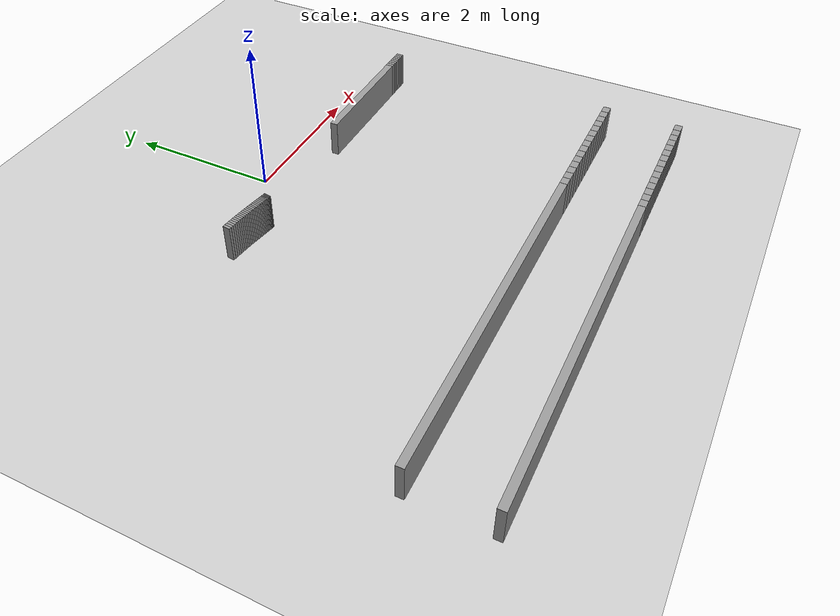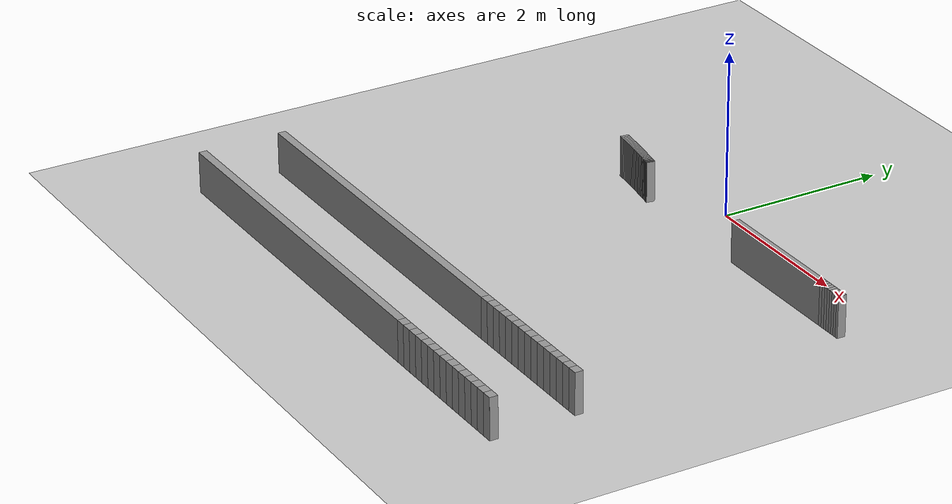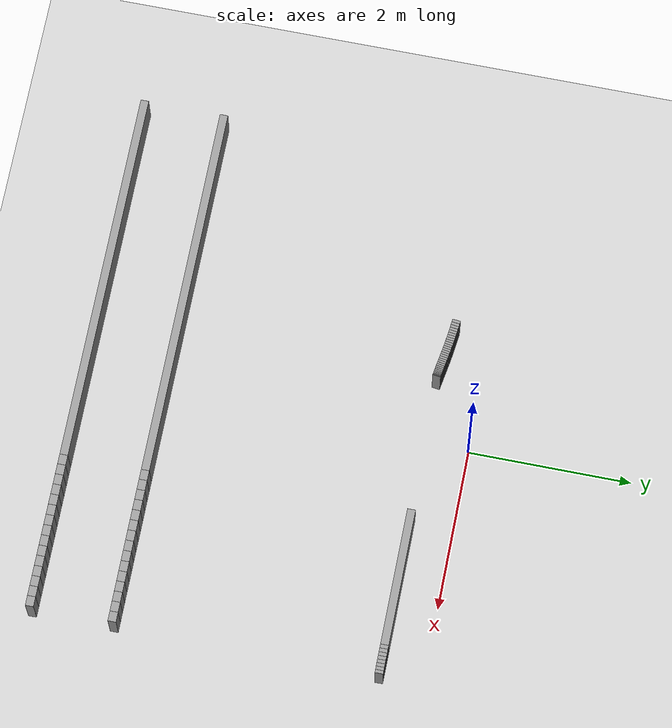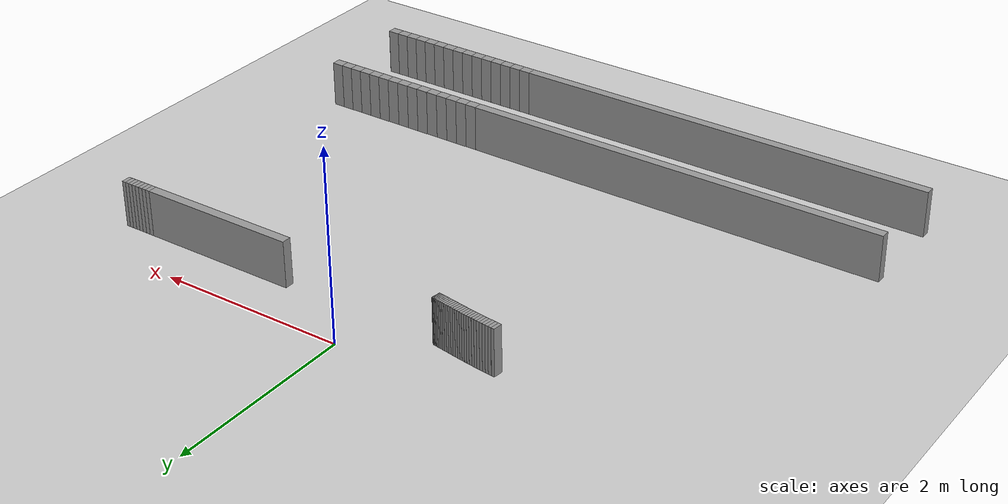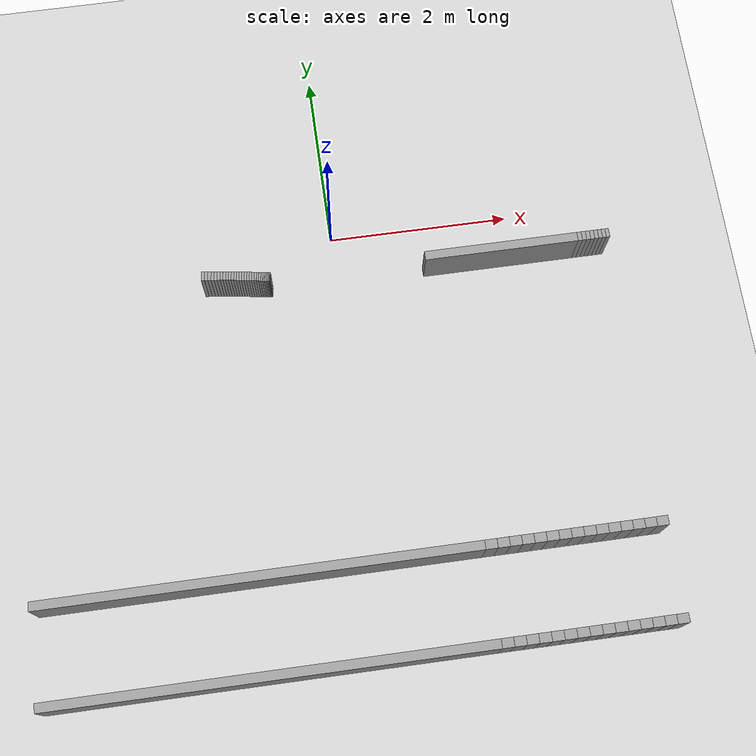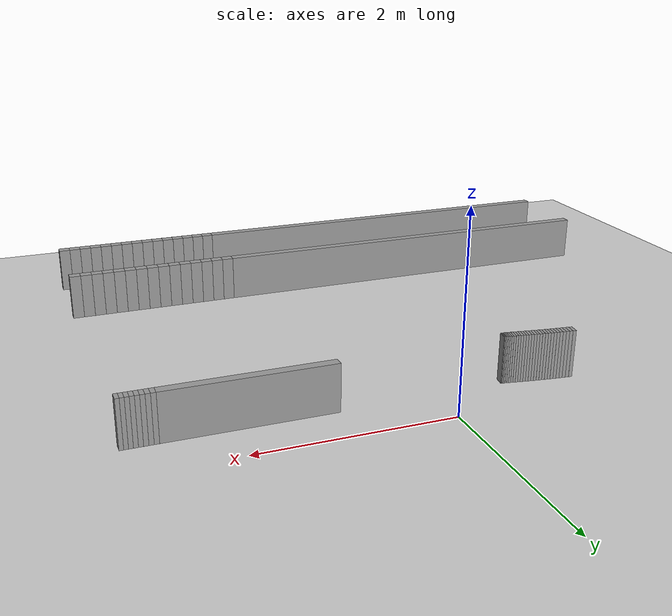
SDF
<sdf version="1.6">
 <world name="default">
  <include><uri>model://ground_plane</uri></include>
  <include><uri>model://sun</uri></include>
  <model name="wall_389_outward">
   <static>true</static>
   <link name="link">
    <collision name="collision">
     <geometry><box><size>0.0005154385495544845 0.1 0.5</size></box></geometry>
    </collision>
    <visual name="visual">
     <geometry><box><size>0.0005154385495544845 0.1 0.5</size></box></geometry>
     <material>
      <script><uri>file://media/materials/scripts/gazebo.material</uri><name>Gazebo/Gray</name></script>
     </material>
    </visual>
   </link>
   <pose>3.021533831245441 -4.748653001605501 0.25 0 0 -3.137940328158273</pose>
  </model>
  <model name="wall_390_outward">
   <static>true</static>
   <link name="link">
    <collision name="collision">
     <geometry><box><size>0.1237180057144098 0.1 0.5</size></box></geometry>
    </collision>
    <visual name="visual">
     <geometry><box><size>0.1237180057144098 0.1 0.5</size></box></geometry>
     <material>
      <script><uri>file://media/materials/scripts/gazebo.material</uri><name>Gazebo/Gray</name></script>
     </material>
    </visual>
   </link>
   <pose>2.9594174151802526 -4.7488479872530345 0.25 0 0 -3.1384557667303574</pose>
  </model>
  <model name="wall_391_outward">
   <static>true</static>
   <link name="link">
    <collision name="collision">
     <geometry><box><size>0.12501079842942767 0.1 0.5</size></box></geometry>
    </collision>
    <visual name="visual">
     <geometry><box><size>0.12501079842942767 0.1 0.5</size></box></geometry>
     <material>
      <script><uri>file://media/materials/scripts/gazebo.material</uri><name>Gazebo/Gray</name></script>
     </material>
    </visual>
   </link>
   <pose>2.8350534849911 -4.749186750813048 0.25 0 0 -3.1392773445738578</pose>
  </model>
  <model name="wall_392_outward">
   <static>true</static>
   <link name="link">
    <collision name="collision">
     <geometry><box><size>0.12586826627388106 0.1 0.5</size></box></geometry>
    </collision>
    <visual name="visual">
     <geometry><box><size>0.12586826627388106 0.1 0.5</size></box></geometry>
     <material>
      <script><uri>file://media/materials/scripts/gazebo.material</uri><name>Gazebo/Gray</name></script>
     </material>
    </visual>
   </link>
   <pose>2.7096142082340635 -4.749436750182685 0.25 0 0 -3.1399197897805258</pose>
  </model>
  <model name="wall_393_outward">
   <static>true</static>
   <link name="link">
    <collision name="collision">
     <geometry><box><size>0.12674487363883466 0.1 0.5</size></box></geometry>
    </collision>
    <visual name="visual">
     <geometry><box><size>0.12674487363883466 0.1 0.5</size></box></geometry>
     <material>
      <script><uri>file://media/materials/scripts/gazebo.material</uri><name>Gazebo/Gray</name></script>
     </material>
    </visual>
   </link>
   <pose>2.583307770796173 -4.749617096442439 0.25 0 0 -3.1404081308463474</pose>
  </model>
  <model name="wall_394_outward">
   <static>true</static>
   <link name="link">
    <collision name="collision">
     <geometry><box><size>0.12757481644771201 0.1 0.5</size></box></geometry>
    </collision>
    <visual name="visual">
     <geometry><box><size>0.12757481644771201 0.1 0.5</size></box></geometry>
     <material>
      <script><uri>file://media/materials/scripts/gazebo.material</uri><name>Gazebo/Gray</name></script>
     </material>
    </visual>
   </link>
   <pose>2.4561479916717968 -4.7497444862680664 0.25 0 0 -3.140772370123416</pose>
  </model>
  <model name="wall_395_outward">
   <static>true</static>
   <link name="link">
    <collision name="collision">
     <geometry><box><size>0.12829107079141444 0.1 0.5</size></box></geometry>
    </collision>
    <visual name="visual">
     <geometry><box><size>0.12829107079141444 0.1 0.5</size></box></geometry>
     <material>
      <script><uri>file://media/materials/scripts/gazebo.material</uri><name>Gazebo/Gray</name></script>
     </material>
    </visual>
   </link>
   <pose>2.3282150795317724 -4.749832662457383 0.25 0 0 -3.141033730190056</pose>
  </model>
  <model name="wall_396_outward">
   <static>true</static>
   <link name="link">
    <collision name="collision"><geometry><box><size>0.128842491509044 0.1 0.5</size></box></geometry></collision>
    <visual name="visual">
     <geometry><box><size>0.128842491509044 0.1 0.5</size></box></geometry>
     <material>
      <script><uri>file://media/materials/scripts/gazebo.material</uri><name>Gazebo/Gray</name></script>
     </material>
    </visual>
   </link>
   <pose>2.1996483128987556 -4.749892587941051 0.25 0 0 -3.14121897181613</pose>
  </model>
  <model name="wall_397_outward">
   <static>true</static>
   <link name="link">
    <collision name="collision">
     <geometry><box><size>0.12918118906670523 0.1 0.5</size></box></geometry>
    </collision>
    <visual name="visual">
     <geometry><box><size>0.12918118906670523 0.1 0.5</size></box></geometry>
     <material>
      <script><uri>file://media/materials/scripts/gazebo.material</uri><name>Gazebo/Gray</name></script>
     </material>
    </visual>
   </link>
   <pose>2.070636479050666 -4.7499324996787085 0.25 0 0 -3.1413474368811483</pose>
  </model>
  <model name="wall_398_outward">
   <static>true</static>
   <link name="link">
    <collision name="collision">
     <geometry><box><size>0.12928535332453608 0.1 0.5</size></box></geometry>
    </collision>
    <visual name="visual">
     <geometry><box><size>0.12928535332453608 0.1 0.5</size></box></geometry>
     <material>
      <script><uri>file://media/materials/scripts/gazebo.material</uri><name>Gazebo/Gray</name></script>
     </material>
    </visual>
   </link>
   <pose>1.9414032106034989 -4.749958549555112 0.25 0 0 -3.1414346900874897</pose>
  </model>
  <model name="wall_399_outward">
   <static>true</static>
   <link name="link">
    <collision name="collision">
     <geometry><box><size>0.12914171039164796 0.1 0.5</size></box></geometry>
    </collision>
    <visual name="visual">
     <geometry><box><size>0.12914171039164796 0.1 0.5</size></box></geometry>
     <material>
      <script><uri>file://media/materials/scripts/gazebo.material</uri><name>Gazebo/Gray</name></script>
     </material>
    </visual>
   </link>
   <pose>1.8121896798741013 -4.749975211249986 0.25 0 0 -3.141492755403477</pose>
  </model>
  <model name="wall_400_outward">
   <static>true</static>
   <link name="link">
    <collision name="collision">
     <geometry><box><size>0.12876044411506601 0.1 0.5</size></box></geometry>
    </collision>
    <visual name="visual">
     <geometry><box><size>0.12876044411506601 0.1 0.5</size></box></geometry>
     <material>
      <script><uri>file://media/materials/scripts/gazebo.material</uri><name>Gazebo/Gray</name></script>
     </material>
    </visual>
   </link>
   <pose>1.6832386030667505 -4.749985654468303 0.25 0 0 -3.141530635987493</pose>
  </model>
  <model name="wall_401_outward">
   <static>true</static>
   <link name="link">
    <collision name="collision">
     <geometry><box><size>0.1281679953477424 0.1 0.5</size></box></geometry>
    </collision>
    <visual name="visual">
     <geometry><box><size>0.1281679953477424 0.1 0.5</size></box></geometry>
     <material>
      <script><uri>file://media/materials/scripts/gazebo.material</uri><name>Gazebo/Gray</name></script>
     </material>
    </visual>
   </link>
   <pose>1.5547743835049066 -4.749992068711837 0.25 0 0 -3.141554866675476</pose>
  </model>
  <model name="wall_402_outward">
   <static>true</static>
   <link name="link">
    <collision name="collision">
     <geometry><box><size>0.12740089931453044 0.1 0.5</size></box></geometry>
    </collision>
    <visual name="visual">
     <geometry><box><size>0.12740089931453044 0.1 0.5</size></box></geometry>
     <material>
      <script><uri>file://media/materials/scripts/gazebo.material</uri><name>Gazebo/Gray</name></script>
     </material>
    </visual>
   </link>
   <pose>1.426989936235775 -4.749995929249154 0.25 0 0 -3.1415700634700032</pose>
  </model>
  <model name="wall_403_outward">
   <static>true</static>
   <link name="link">
    <collision name="collision">
     <geometry><box><size>0.12650729061887647 0.1 0.5</size></box></geometry>
    </collision>
    <visual name="visual">
     <geometry><box><size>0.12650729061887647 0.1 0.5</size></box></geometry>
     <material>
      <script><uri>file://media/materials/scripts/gazebo.material</uri><name>Gazebo/Gray</name></script>
     </material>
    </visual>
   </link>
   <pose>1.3000358412908743 -4.749998206115942 0.25 0 0 -3.141579407459929</pose>
  </model>
  <model name="wall_404_outward">
   <static>true</static>
   <link name="link">
    <collision name="collision">
     <geometry><box><size>0.1255438226787235 0.1 0.5</size></box></geometry>
    </collision>
    <visual name="visual">
     <geometry><box><size>0.1255438226787235 0.1 0.5</size></box></geometry>
     <material>
      <script><uri>file://media/materials/scripts/gazebo.material</uri><name>Gazebo/Gray</name></script>
     </material>
    </visual>
   </link>
   <pose>1.1740102846494436 -4.749999521983723 0.25 0 0 -3.1415850386905464</pose>
  </model>
  <model name="wall_405_outward">
   <static>true</static>
   <link name="link">
    <collision name="collision">
     <geometry><box><size>4.6623603307257575 0.1 0.5</size></box></geometry>
    </collision>
    <visual name="visual">
     <geometry><box><size>4.6623603307257575 0.1 0.5</size></box></geometry>
     <material>
      <script><uri>file://media/materials/scripts/gazebo.material</uri><name>Gazebo/Gray</name></script>
     </material>
    </visual>
   </link>
   <pose>-1.2199417920509772 -4.749999999992752 0.25 0 0 -3.141592653586684</pose>
  </model>
  <model name="wall_0_inward">
   <static>true</static>
   <link name="link">
    <collision name="collision">
     <geometry><box><size>1.6948439300155178 0.1 0.5</size></box></geometry>
    </collision>
    <visual name="visual">
     <geometry><box><size>1.6948439300155178 0.1 0.5</size></box></geometry>
     <material>
      <script><uri>file://media/materials/scripts/gazebo.material</uri><name>Gazebo/Gray</name></script>
     </material>
    </visual>
   </link>
   <pose>1.8243430274921835 -0.52499999998764 0.25 0 0 1.458535052202123e-11</pose>
  </model>
  <model name="wall_1_inward">
   <static>true</static>
   <link name="link">
    <collision name="collision">
     <geometry><box><size>0.04807283049834874 0.1 0.5</size></box></geometry>
    </collision>
    <visual name="visual">
     <geometry><box><size>0.04807283049834874 0.1 0.5</size></box></geometry>
     <material>
      <script><uri>file://media/materials/scripts/gazebo.material</uri><name>Gazebo/Gray</name></script>
     </material>
    </visual>
   </link>
   <pose>2.695801407747928 -0.5249997609541881 0.25 0 0 9.94412392846933e-06</pose>
  </model>
  <model name="wall_2_inward">
   <static>true</static>
   <link name="link">
    <collision name="collision">
     <geometry><box><size>0.04689919603648431 0.1 0.5</size></box></geometry>
    </collision>
    <visual name="visual">
     <geometry><box><size>0.04689919603648431 0.1 0.5</size></box></geometry>
     <material>
      <script><uri>file://media/materials/scripts/gazebo.material</uri><name>Gazebo/Gray</name></script>
     </material>
    </visual>
   </link>
   <pose>2.743287421010413 -0.5249991029372996 0.25 0 0 1.786793087878038e-05</pose>
  </model>
  <model name="wall_3_inward">
   <static>true</static>
   <link name="link">
    <collision name="collision">
     <geometry><box><size>0.045764880613358816 0.1 0.5</size></box></geometry>
    </collision>
    <visual name="visual">
     <geometry><box><size>0.045764880613358816 0.1 0.5</size></box></geometry>
     <material>
      <script><uri>file://media/materials/scripts/gazebo.material</uri><name>Gazebo/Gray</name></script>
     </material>
    </visual>
   </link>
   <pose>2.7896194593202734 -0.524997964254559 0.25 0 0 3.1451494443454984e-05</pose>
  </model>
  <model name="wall_4_inward">
   <static>true</static>
   <link name="link">
    <collision name="collision">
     <geometry><box><size>0.04467727973279135 0.1 0.5</size></box></geometry>
    </collision>
    <visual name="visual">
     <geometry><box><size>0.04467727973279135 0.1 0.5</size></box></geometry>
     <material>
      <script><uri>file://media/materials/scripts/gazebo.material</uri><name>Gazebo/Gray</name></script>
     </material>
    </visual>
   </link>
   <pose>2.834840539449176 -0.5249960330038024 0.25 0 0 5.423623911074502e-05</pose>
  </model>
  <model name="wall_5_inward">
   <static>true</static>
   <link name="link">
    <collision name="collision">
     <geometry><box><size>0.043628153184246746 0.1 0.5</size></box></geometry>
    </collision>
    <visual name="visual">
     <geometry><box><size>0.043628153184246746 0.1 0.5</size></box></geometry>
     <material>
      <script><uri>file://media/materials/scripts/gazebo.material</uri><name>Gazebo/Gray</name></script>
     </material>
    </visual>
   </link>
   <pose>2.8789932557601072 -0.524992584129596 0.25 0 0 0.00010256269103121382</pose>
  </model>
  <model name="wall_6_inward">
   <static>true</static>
   <link name="link">
    <collision name="collision">
     <geometry><box><size>0.04263211186618322 0.1 0.5</size></box></geometry>
    </collision>
    <visual name="visual">
     <geometry><box><size>0.04263211186618322 0.1 0.5</size></box></geometry>
     <material>
      <script><uri>file://media/materials/scripts/gazebo.material</uri><name>Gazebo/Gray</name></script>
     </material>
    </visual>
   </link>
   <pose>2.9221233878582 -0.5249866974561842 0.25 0 0 0.0001712025455080548</pose>
  </model>
  <model name="wall_7_inward">
   <static>true</static>
   <link name="link">
    <collision name="collision">
     <geometry><box><size>0.041693585987074636 0.1 0.5</size></box></geometry>
    </collision>
    <visual name="visual">
     <geometry><box><size>0.041693585987074636 0.1 0.5</size></box></geometry>
     <material>
      <script><uri>file://media/materials/scripts/gazebo.material</uri><name>Gazebo/Gray</name></script>
     </material>
    </visual>
   </link>
   <pose>2.964286235654942 -0.5249772099114693 0.25 0 0 0.000280051793814434</pose>
  </model>
  <model name="wall_8_inward">
   <static>true</static>
   <link name="link">
    <collision name="collision">
     <geometry><box><size>0.04083088142494241 0.1 0.5</size></box></geometry>
    </collision>
    <visual name="visual">
     <geometry><box><size>0.04083088142494241 0.1 0.5</size></box></geometry>
     <material>
      <script><uri>file://media/materials/scripts/gazebo.material</uri><name>Gazebo/Gray</name></script>
     </material>
    </visual>
   </link>
   <pose>3.0055484664867516 -0.5249622078356836 0.25 0 0 0.00044887076040567276</pose>
  </model>
  <model name="wall_238_inward">
   <static>true</static>
   <link name="link">
    <collision name="collision">
     <geometry><box><size>0.1232545533539745 0.1 0.5</size></box></geometry>
    </collision>
    <visual name="visual">
     <geometry><box><size>0.1232545533539745 0.1 0.5</size></box></geometry>
     <material>
      <script><uri>file://media/materials/scripts/gazebo.material</uri><name>Gazebo/Gray</name></script>
     </material>
    </visual>
   </link>
   <pose>2.956254540464716 -3.748852988815954 0.25 0 0 -3.1384557667303548</pose>
  </model>
  <model name="wall_239_inward">
   <static>true</static>
   <link name="link">
    <collision name="collision">
     <geometry><box><size>0.12423312201294025 0.1 0.5</size></box></geometry>
    </collision>
    <visual name="visual">
     <geometry><box><size>0.12423312201294025 0.1 0.5</size></box></geometry>
     <material>
      <script><uri>file://media/materials/scripts/gazebo.material</uri><name>Gazebo/Gray</name></script>
     </material>
    </visual>
   </link>
   <pose>2.8325111722869933 -3.749190041073218 0.25 0 0 -3.1392786988914647</pose>
  </model>
  <model name="wall_240_inward">
   <static>true</static>
   <link name="link">
    <collision name="collision">
     <geometry><box><size>0.12526483622028237 0.1 0.5</size></box></geometry>
    </collision>
    <visual name="visual">
     <geometry><box><size>0.12526483622028237 0.1 0.5</size></box></geometry>
     <material>
      <script><uri>file://media/materials/scripts/gazebo.material</uri><name>Gazebo/Gray</name></script>
     </material>
    </visual>
   </link>
   <pose>2.7077624470201678 -3.749438500050865 0.25 0 0 -3.139920608190816</pose>
  </model>
  <model name="wall_241_inward">
   <static>true</static>
   <link name="link">
    <collision name="collision">
     <geometry><box><size>0.12628787205423467 0.1 0.5</size></box></geometry>
    </collision>
    <visual name="visual">
     <geometry><box><size>0.12628787205423467 0.1 0.5</size></box></geometry>
     <material>
      <script><uri>file://media/materials/scripts/gazebo.material</uri><name>Gazebo/Gray</name></script>
     </material>
    </visual>
   </link>
   <pose>2.5819862246980483 -3.749617989999723 0.25 0 0 -3.1404086005626812</pose>
  </model>
  <model name="wall_242_inward">
   <static>true</static>
   <link name="link">
    <collision name="collision">
     <geometry><box><size>0.12723648617426483 0.1 0.5</size></box></geometry>
    </collision>
    <visual name="visual">
     <geometry><box><size>0.12723648617426483 0.1 0.5</size></box></geometry>
     <material>
      <script><uri>file://media/materials/scripts/gazebo.material</uri><name>Gazebo/Gray</name></script>
     </material>
    </visual>
   </link>
   <pose>2.455224111236803 -3.749744924217236 0.25 0 0 -3.140772629808854</pose>
  </model>
  <model name="wall_243_inward">
   <static>true</static>
   <link name="link">
    <collision name="collision">
     <geometry><box><size>0.1280488519770296 0.1 0.5</size></box></geometry>
    </collision>
    <visual name="visual">
     <geometry><box><size>0.1280488519770296 0.1 0.5</size></box></geometry>
     <material>
      <script><uri>file://media/materials/scripts/gazebo.material</uri><name>Gazebo/Gray</name></script>
     </material>
    </visual>
   </link>
   <pose>2.3275814735465574 -3.7498328689173466 0.25 0 0 -3.141033863174512</pose>
  </model>
  <model name="wall_244_inward">
   <static>true</static>
   <link name="link">
    <collision name="collision">
     <geometry><box><size>0.12867150251095336 0.1 0.5</size></box></geometry>
    </collision>
    <visual name="visual">
     <geometry><box><size>0.12867150251095336 0.1 0.5</size></box></geometry>
     <material>
      <script><uri>file://media/materials/scripts/gazebo.material</uri><name>Gazebo/Gray</name></script>
     </material>
    </visual>
   </link>
   <pose>2.199221310788535 -3.7498926819676086 0.25 0 0 -3.141219038350559</pose>
  </model>
  <model name="wall_245_inward">
   <static>true</static>
   <link name="link">
    <collision name="collision">
     <geometry><box><size>0.12906305723008024 0.1 0.5</size></box></geometry>
    </collision>
    <visual name="visual">
     <geometry><box><size>0.12906305723008024 0.1 0.5</size></box></geometry>
     <material>
      <script><uri>file://media/materials/scripts/gazebo.material</uri><name>Gazebo/Gray</name></script>
     </material>
    </visual>
   </link>
   <pose>2.070354037347954 -3.749932540933126 0.25 0 0 -3.141347468802168</pose>
  </model>
  <model name="wall_246_inward">
   <static>true</static>
   <link name="link">
    <collision name="collision">
     <geometry><box><size>0.12920541203623634 0.1 0.5</size></box></geometry>
    </collision>
    <visual name="visual">
     <geometry><box><size>0.12920541203623634 0.1 0.5</size></box></geometry>
     <material>
      <script><uri>file://media/materials/scripts/gazebo.material</uri><name>Gazebo/Gray</name></script>
     </material>
    </visual>
   </link>
   <pose>1.9412198054603191 -3.749958567001088 0.25 0 0 -3.1414347048032276</pose>
  </model>
  <model name="wall_247_inward">
   <static>true</static>
   <link name="link">
    <collision name="collision">
     <geometry><box><size>0.1290886983444166 0.1 0.5</size></box></geometry>
    </collision>
    <visual name="visual">
     <geometry><box><size>0.1290886983444166 0.1 0.5</size></box></geometry>
     <material>
      <script><uri>file://media/materials/scripts/gazebo.material</uri><name>Gazebo/Gray</name></script>
     </material>
    </visual>
   </link>
   <pose>1.8120727513978636 -3.7499752183623225 0.25 0 0 -3.141492761928541</pose>
  </model>
  <model name="wall_248_inward">
   <static>true</static>
   <link name="link">
    <collision name="collision">
     <geometry><box><size>0.12872597922004575 0.1 0.5</size></box></geometry>
    </collision>
    <visual name="visual">
     <geometry><box><size>0.12872597922004575 0.1 0.5</size></box></geometry>
     <material>
      <script><uri>file://media/materials/scripts/gazebo.material</uri><name>Gazebo/Gray</name></script>
     </material>
    </visual>
   </link>
   <pose>1.6831654130614202 -3.749985657263581 0.25 0 0 -3.141530638773006</pose>
  </model>
  <model name="wall_249_inward">
   <static>true</static>
   <link name="link">
    <collision name="collision">
     <geometry><box><size>0.12814602451695378 0.1 0.5</size></box></geometry>
    </collision>
    <visual name="visual">
     <geometry><box><size>0.12814602451695378 0.1 0.5</size></box></geometry>
     <material>
      <script><uri>file://media/materials/scripts/gazebo.material</uri><name>Gazebo/Gray</name></script>
     </material>
    </visual>
   </link>
   <pose>1.554729411362426 -3.7499920697706424 0.25 0 0 -3.1415548678205463</pose>
  </model>
  <model name="wall_250_inward">
   <static>true</static>
   <link name="link">
    <collision name="collision">
     <geometry><box><size>0.1273871663192216 0.1 0.5</size></box></geometry>
    </collision>
    <visual name="visual">
     <geometry><box><size>0.1273871663192216 0.1 0.5</size></box></geometry>
     <material>
      <script><uri>file://media/materials/scripts/gazebo.material</uri><name>Gazebo/Gray</name></script>
     </material>
    </visual>
   </link>
   <pose>1.42696281600633 -3.749995929635509 0.25 0 0 -3.1415700639231425</pose>
  </model>
  <model name="wall_251_inward">
   <static>true</static>
   <link name="link">
    <collision name="collision">
     <geometry><box><size>0.12649887510651558 0.1 0.5</size></box></geometry>
    </collision>
    <visual name="visual">
     <geometry><box><size>0.12649887510651558 0.1 0.5</size></box></geometry>
     <material>
      <script><uri>file://media/materials/scripts/gazebo.material</uri><name>Gazebo/Gray</name></script>
     </material>
    </visual>
   </link>
   <pose>1.3000197953152612 -3.7499982062516715 0.25 0 0 -3.1415794076324626</pose>
  </model>
  <model name="wall_252_inward">
   <static>true</static>
   <link name="link">
    <collision name="collision">
     <geometry><box><size>0.12553769559006928 0.1 0.5</size></box></geometry>
    </collision>
    <visual name="visual">
     <geometry><box><size>0.12553769559006928 0.1 0.5</size></box></geometry>
     <material>
      <script><uri>file://media/materials/scripts/gazebo.material</uri><name>Gazebo/Gray</name></script>
     </material>
    </visual>
   </link>
   <pose>1.1740015099743375 -3.7499995220255116 0.25 0 0 -3.141585038753685</pose>
  </model>
  <model name="wall_253_inward">
   <static>true</static>
   <link name="link">
    <collision name="collision"><geometry><box><size>4.662353645232036 0.1 0.5</size></box></geometry></collision>
    <visual name="visual">
     <geometry><box><size>4.662353645232036 0.1 0.5</size></box></geometry>
     <material>
      <script><uri>file://media/materials/scripts/gazebo.material</uri><name>Gazebo/Gray</name></script>
     </material>
    </visual>
   </link>
   <pose>-1.2199441604348955 -3.75 0.25 0 0 3.141592653589793</pose>
  </model>
  <model name="wall_823_inward">
   <static>true</static>
   <link name="link">
    <collision name="collision">
     <geometry><box><size>0.03594868342014552 0.1 0.5</size></box></geometry>
    </collision>
    <visual name="visual">
     <geometry><box><size>0.03594868342014552 0.1 0.5</size></box></geometry>
     <material>
      <script><uri>file://media/materials/scripts/gazebo.material</uri><name>Gazebo/Gray</name></script>
     </material>
    </visual>
   </link>
   <pose>-1.4563197512177937 -0.43808194138175877 0.25 0 0 -0.11523017128992943</pose>
  </model>
  <model name="wall_824_inward">
   <static>true</static>
   <link name="link">
    <collision name="collision">
     <geometry><box><size>0.0007282851033704886 0.1 0.5</size></box></geometry>
    </collision>
    <visual name="visual">
     <geometry><box><size>0.0007282851033704886 0.1 0.5</size></box></geometry>
     <material>
      <script><uri>file://media/materials/scripts/gazebo.material</uri><name>Gazebo/Gray</name></script>
     </material>
    </visual>
   </link>
   <pose>-1.438102851031935 -0.44019015132520084 0.25 0 0 -0.11450188612222245</pose>
  </model>
  <model name="wall_825_inward">
   <static>true</static>
   <link name="link">
    <collision name="collision">
     <geometry><box><size>0.035642932531743575 0.1 0.5</size></box></geometry>
    </collision>
    <visual name="visual">
     <geometry><box><size>0.035642932531743575 0.1 0.5</size></box></geometry>
     <material>
      <script><uri>file://media/materials/scripts/gazebo.material</uri><name>Gazebo/Gray</name></script>
     </material>
    </visual>
   </link>
   <pose>-1.4200348451163136 -0.44225498227441407 0.25 0 0 -0.1137728186913611</pose>
  </model>
  <model name="wall_826_inward">
   <static>true</static>
   <link name="link">
    <collision name="collision">
     <geometry><box><size>0.03478309949808407 0.1 0.5</size></box></geometry>
    </collision>
    <visual name="visual">
     <geometry><box><size>0.03478309949808407 0.1 0.5</size></box></geometry>
     <material>
      <script><uri>file://media/materials/scripts/gazebo.material</uri><name>Gazebo/Gray</name></script>
     </material>
    </visual>
   </link>
   <pose>-1.3850488296160441 -0.44624687178637684 0.25 0 0 -0.11343964197546404</pose>
  </model>
  <model name="wall_827_inward">
   <static>true</static>
   <link name="link">
    <collision name="collision">
     <geometry><box><size>0.03381033718550338 0.1 0.5</size></box></geometry>
    </collision>
    <visual name="visual">
     <geometry><box><size>0.03381033718550338 0.1 0.5</size></box></geometry>
     <material>
      <script><uri>file://media/materials/scripts/gazebo.material</uri><name>Gazebo/Gray</name></script>
     </material>
    </visual>
   </link>
   <pose>-1.3509742183627267 -0.45014373398296514 0.25 0 0 -0.11430854365594151</pose>
  </model>
  <model name="wall_828_inward">
   <static>true</static>
   <link name="link">
    <collision name="collision">
     <geometry><box><size>0.03280080036456984 0.1 0.5</size></box></geometry>
    </collision>
    <visual name="visual">
     <geometry><box><size>0.03280080036456984 0.1 0.5</size></box></geometry>
     <material>
      <script><uri>file://media/materials/scripts/gazebo.material</uri><name>Gazebo/Gray</name></script>
     </material>
    </visual>
   </link>
   <pose>-1.3178898466194726 -0.4539757190016835 0.25 0 0 -0.11634393231695687</pose>
  </model>
  <model name="wall_829_inward">
   <static>true</static>
   <link name="link">
    <collision name="collision">
     <geometry><box><size>0.03186378266345015 0.1 0.5</size></box></geometry>
    </collision>
    <visual name="visual">
     <geometry><box><size>0.03186378266345015 0.1 0.5</size></box></geometry>
     <material>
      <script><uri>file://media/materials/scripts/gazebo.material</uri><name>Gazebo/Gray</name></script>
     </material>
    </visual>
   </link>
   <pose>-1.2857820210201272 -0.457778616601195 0.25 0 0 -0.1194860461725384</pose>
  </model>
  <model name="wall_830_inward">
   <static>true</static>
   <link name="link">
    <collision name="collision">
     <geometry><box><size>0.031036867061028223 0.1 0.5</size></box></geometry>
    </collision>
    <visual name="visual">
     <geometry><box><size>0.031036867061028223 0.1 0.5</size></box></geometry>
     <material>
      <script><uri>file://media/materials/scripts/gazebo.material</uri><name>Gazebo/Gray</name></script>
     </material>
    </visual>
   </link>
   <pose>-1.2545636776776576 -0.4615909370485492 0.25 0 0 -0.12360063727687207</pose>
  </model>
  <model name="wall_831_inward">
   <static>true</static>
   <link name="link">
    <collision name="collision">
     <geometry><box><size>0.030333525269028744 0.1 0.5</size></box></geometry>
    </collision>
    <visual name="visual">
     <geometry><box><size>0.030333525269028744 0.1 0.5</size></box></geometry>
     <material>
      <script><uri>file://media/materials/scripts/gazebo.material</uri><name>Gazebo/Gray</name></script>
     </material>
    </visual>
   </link>
   <pose>-1.2241218481461424 -0.465447192828501 0.25 0 0 -0.12846527635962546</pose>
  </model>
  <model name="wall_832_inward">
   <static>true</static>
   <link name="link">
    <collision name="collision">
     <geometry><box><size>0.02975730556498032 0.1 0.5</size></box></geometry>
    </collision>
    <visual name="visual">
     <geometry><box><size>0.02975730556498032 0.1 0.5</size></box></geometry>
     <material>
      <script><uri>file://media/materials/scripts/gazebo.material</uri><name>Gazebo/Gray</name></script>
     </material>
    </visual>
   </link>
   <pose>-1.1943345055147319 -0.4693758885389506 0.25 0 0 -0.13385554112519113</pose>
  </model>
  <model name="wall_833_inward">
   <static>true</static>
   <link name="link">
    <collision name="collision">
     <geometry><box><size>0.02930778503752575 0.1 0.5</size></box></geometry>
    </collision>
    <visual name="visual">
     <geometry><box><size>0.02930778503752575 0.1 0.5</size></box></geometry>
     <material>
      <script><uri>file://media/materials/scripts/gazebo.material</uri><name>Gazebo/Gray</name></script>
     </material>
    </visual>
   </link>
   <pose>-1.1650773816380644 -0.47339894941197713 0.25 0 0 -0.13948748999511862</pose>
  </model>
  <model name="wall_834_inward">
   <static>true</static>
   <link name="link">
    <collision name="collision">
     <geometry><box><size>0.02896356447229218 0.1 0.5</size></box></geometry>
    </collision>
    <visual name="visual">
     <geometry><box><size>0.02896356447229218 0.1 0.5</size></box></geometry>
     <material>
      <script><uri>file://media/materials/scripts/gazebo.material</uri><name>Gazebo/Gray</name></script>
     </material>
    </visual>
   </link>
   <pose>-1.1362361926394409 -0.4775301361052504 0.25 0 0 -0.1450883508042035</pose>
  </model>
  <model name="wall_835_inward">
   <static>true</static>
   <link name="link">
    <collision name="collision">
     <geometry><box><size>0.028698442998190046 0.1 0.5</size></box></geometry>
    </collision>
    <visual name="visual">
     <geometry><box><size>0.028698442998190046 0.1 0.5</size></box></geometry>
     <material>
      <script><uri>file://media/materials/scripts/gazebo.material</uri><name>Gazebo/Gray</name></script>
     </material>
    </visual>
   </link>
   <pose>-1.1077193375254133 -0.4817739412905132 0.25 0 0 -0.15040248898252737</pose>
  </model>
  <model name="wall_836_inward">
   <static>true</static>
   <link name="link">
    <collision name="collision">
     <geometry><box><size>0.028483309213205844 0.1 0.5</size></box></geometry>
    </collision>
    <visual name="visual">
     <geometry><box><size>0.028483309213205844 0.1 0.5</size></box></geometry>
     <material>
      <script><uri>file://media/materials/scripts/gazebo.material</uri><name>Gazebo/Gray</name></script>
     </material>
    </visual>
   </link>
   <pose>-1.0794616727612296 -0.4861257035478458 0.25 0 0 -0.15522052697133742</pose>
  </model>
  <model name="wall_837_inward">
   <static>true</static>
   <link name="link">
    <collision name="collision">
     <geometry><box><size>0.028290558368587616 0.1 0.5</size></box></geometry>
    </collision>
    <visual name="visual">
     <geometry><box><size>0.028290558368587616 0.1 0.5</size></box></geometry>
     <material>
      <script><uri>file://media/materials/scripts/gazebo.material</uri><name>Gazebo/Gray</name></script>
     </material>
    </visual>
   </link>
   <pose>-1.0514251833336314 -0.4905720308664212 0.25 0 0 -0.15935524557458086</pose>
  </model>
  <model name="wall_838_inward">
   <static>true</static>
   <link name="link">
    <collision name="collision">
     <geometry><box><size>0.028075089677693378 0.1 0.5</size></box></geometry>
    </collision>
    <visual name="visual">
     <geometry><box><size>0.028075089677693378 0.1 0.5</size></box></geometry>
     <material>
      <script><uri>file://media/materials/scripts/gazebo.material</uri><name>Gazebo/Gray</name></script>
     </material>
    </visual>
   </link>
   <pose>-1.0236069035004016 -0.49509007180205195 0.25 0 0 -0.1626710582709255</pose>
  </model>
  <model name="wall_839_inward">
   <static>true</static>
   <link name="link">
    <collision name="collision">
     <geometry><box><size>0.027800656817431376 0.1 0.5</size></box></geometry>
    </collision>
    <visual name="visual">
     <geometry><box><size>0.027800656817431376 0.1 0.5</size></box></geometry>
     <material>
      <script><uri>file://media/materials/scripts/gazebo.material</uri><name>Gazebo/Gray</name></script>
     </material>
    </visual>
   </link>
   <pose>-0.9960434303441658 -0.4996484193330924 0.25 0 0 -0.16512701519766565</pose>
  </model>
  <model name="wall_840_inward">
   <static>true</static>
   <link name="link">
    <collision name="collision">
     <geometry><box><size>0.027435404922976424 0.1 0.5</size></box></geometry>
    </collision>
    <visual name="visual">
     <geometry><box><size>0.027435404922976424 0.1 0.5</size></box></geometry>
     <material>
      <script><uri>file://media/materials/scripts/gazebo.material</uri><name>Gazebo/Gray</name></script>
     </material>
    </visual>
   </link>
   <pose>-0.9688046215979192 -0.5042093906873393 0.25 0 0 -0.16669288481541428</pose>
  </model>
  <model name="wall_841_inward">
   <static>true</static>
   <link name="link">
    <collision name="collision">
     <geometry><box><size>0.026954013584549748 0.1 0.5</size></box></geometry>
    </collision>
    <visual name="visual">
     <geometry><box><size>0.026954013584549748 0.1 0.5</size></box></geometry>
     <material>
      <script><uri>file://media/materials/scripts/gazebo.material</uri><name>Gazebo/Gray</name></script>
     </material>
    </visual>
   </link>
   <pose>-0.9419884841211607 -0.5087312139134064 0.25 0 0 -0.16741699764757642</pose>
  </model>
  <model name="wall_842_inward">
   <static>true</static>
   <link name="link">
    <collision name="collision">
     <geometry><box><size>0.02643214304304112 0.1 0.5</size></box></geometry>
    </collision>
    <visual name="visual">
     <geometry><box><size>0.02643214304304112 0.1 0.5</size></box></geometry>
     <material>
      <script><uri>file://media/materials/scripts/gazebo.material</uri><name>Gazebo/Gray</name></script>
     </material>
    </visual>
   </link>
   <pose>-0.9156684962233008 -0.5131785351744085 0.25 0 0 -0.16736273896631926</pose>
  </model>
  <model name="wall_843_inward">
   <static>true</static>
   <link name="link">
    <collision name="collision">
     <geometry><box><size>0.024948183563823233 0.1 0.5</size></box></geometry>
    </collision>
    <visual name="visual">
     <geometry><box><size>0.024948183563823233 0.1 0.5</size></box></geometry>
     <material>
      <script><uri>file://media/materials/scripts/gazebo.material</uri><name>Gazebo/Gray</name></script>
     </material>
    </visual>
   </link>
   <pose>-0.8903359033978462 -0.5174498532122219 0.25 0 0 -0.16669495341131793</pose>
  </model>
  <model name="wall_844_inward">
   <static>true</static>
   <link name="link">
    <collision name="collision">
     <geometry><box><size>0.0005739433435458331 0.1 0.5</size></box></geometry>
    </collision>
    <visual name="visual">
     <geometry><box><size>0.0005739433435458331 0.1 0.5</size></box></geometry>
     <material>
      <script><uri>file://media/materials/scripts/gazebo.material</uri><name>Gazebo/Gray</name></script>
     </material>
    </visual>
   </link>
   <pose>-0.8777516996518504 -0.5195670578242122 0.25 0 0 -0.16612101003627622</pose>
  </model>
  <model name="wall_845_inward">
   <static>true</static>
   <link name="link">
    <collision name="collision">
     <geometry><box><size>0.023645166002623966 0.1 0.5</size></box></geometry>
    </collision>
    <visual name="visual">
     <geometry><box><size>0.023645166002623966 0.1 0.5</size></box></geometry>
     <material>
      <script><uri>file://media/materials/scripts/gazebo.material</uri><name>Gazebo/Gray</name></script>
     </material>
    </visual>
   </link>
   <pose>-0.8658077297513683 -0.5215627773133193 0.25 0 0 -0.16554706666120278</pose>
  </model>
  <model name="wall_846_inward">
   <static>true</static>
   <link name="link">
    <collision name="collision">
     <geometry><box><size>0.0007403714419204063 0.1 0.5</size></box></geometry>
    </collision>
    <visual name="visual">
     <geometry><box><size>0.0007403714419204063 0.1 0.5</size></box></geometry>
     <material>
      <script><uri>file://media/materials/scripts/gazebo.material</uri><name>Gazebo/Gray</name></script>
     </material>
    </visual>
   </link>
   <pose>-0.8537816112209651 -0.5235717770167801 0.25 0 0 -0.16480669515166302</pose>
  </model>
  <model name="wall_847_inward">
   <static>true</static>
   <link name="link">
    <collision name="collision">
     <geometry><box><size>0.022165653601214558 0.1 0.5</size></box></geometry>
    </collision>
    <visual name="visual">
     <geometry><box><size>0.022165653601214558 0.1 0.5</size></box></geometry>
     <material>
      <script><uri>file://media/materials/scripts/gazebo.material</uri><name>Gazebo/Gray</name></script>
     </material>
    </visual>
   </link>
   <pose>-0.8424824428182971 -0.525442682406807 0.25 0 0 -0.1640663236420849</pose>
  </model>
  <model name="wall_848_inward">
   <static>true</static>
   <link name="link">
    <collision name="collision">
     <geometry><box><size>0.0008300785697598637 0.1 0.5</size></box></geometry>
    </collision>
    <visual name="visual">
     <geometry><box><size>0.0008300785697598637 0.1 0.5</size></box></geometry>
     <material>
      <script><uri>file://media/materials/scripts/gazebo.material</uri><name>Gazebo/Gray</name></script>
     </material>
    </visual>
   </link>
   <pose>-0.8311389221833454 -0.5273203034960618 0.25 0 0 -0.16323624497711214</pose>
  </model>
  <model name="wall_849_inward">
   <static>true</static>
   <link name="link">
    <collision name="collision">
     <geometry><box><size>0.02048909538657307 0.1 0.5</size></box></geometry>
    </collision>
    <visual name="visual">
     <geometry><box><size>0.02048909538657307 0.1 0.5</size></box></geometry>
     <material>
      <script><uri>file://media/materials/scripts/gazebo.material</uri><name>Gazebo/Gray</name></script>
     </material>
    </visual>
   </link>
   <pose>-0.8206196597064356 -0.5290442259297262 0.25 0 0 -0.16240616631191288</pose>
  </model>
  <model name="wall_850_inward">
   <static>true</static>
   <link name="link">
    <collision name="collision">
     <geometry><box><size>0.0008630643049327574 0.1 0.5</size></box></geometry>
    </collision>
    <visual name="visual">
     <geometry><box><size>0.0008630643049327574 0.1 0.5</size></box></geometry>
     <material>
      <script><uri>file://media/materials/scripts/gazebo.material</uri><name>Gazebo/Gray</name></script>
     </material>
    </visual>
   </link>
   <pose>-0.8100840054810012 -0.5307701076238106 0.25 0 0 -0.1615431019000163</pose>
  </model>
  <model name="wall_851_inward">
   <static>true</static>
   <link name="link">
    <collision name="collision">
     <geometry><box><size>0.018600542863516707 0.1 0.5</size></box></geometry>
    </collision>
    <visual name="visual">
     <geometry><box><size>0.018600542863516707 0.1 0.5</size></box></geometry>
     <material>
      <script><uri>file://media/materials/scripts/gazebo.material</uri><name>Gazebo/Gray</name></script>
     </material>
    </visual>
   </link>
   <pose>-0.8004776197992655 -0.5323274618372744 0.25 0 0 -0.16068003748775445</pose>
  </model>
  <model name="wall_852_inward">
   <static>true</static>
   <link name="link">
    <collision name="collision">
     <geometry><box><size>0.0008268360897843695 0.1 0.5</size></box></geometry>
    </collision>
    <visual name="visual">
     <geometry><box><size>0.0008268360897843695 0.1 0.5</size></box></geometry>
     <material>
      <script><uri>file://media/materials/scripts/gazebo.material</uri><name>Gazebo/Gray</name></script>
     </material>
    </visual>
   </link>
   <pose>-0.7908890005973809 -0.5338812129181896 0.25 0 0 -0.15985320130360245</pose>
  </model>
  <model name="wall_853_inward">
   <static>true</static>
   <link name="link">
    <collision name="collision">
     <geometry><box><size>0.01649212201006458 0.1 0.5</size></box></geometry>
    </collision>
    <visual name="visual">
     <geometry><box><size>0.01649212201006458 0.1 0.5</size></box></geometry>
     <material>
      <script><uri>file://media/materials/scripts/gazebo.material</uri><name>Gazebo/Gray</name></script>
     </material>
    </visual>
   </link>
   <pose>-0.7823388417032053 -0.5352528389495087 0.25 0 0 -0.1590263651197692</pose>
  </model>
  <model name="wall_854_inward">
   <static>true</static>
   <link name="link">
    <collision name="collision">
     <geometry><box><size>0.0007742857542641546 0.1 0.5</size></box></geometry>
    </collision>
    <visual name="visual">
     <geometry><box><size>0.0007742857542641546 0.1 0.5</size></box></geometry>
     <material>
      <script><uri>file://media/materials/scripts/gazebo.material</uri><name>Gazebo/Gray</name></script>
     </material>
    </visual>
   </link>
   <pose>-0.7738145248100825 -0.5366196706372945 0.25 0 0 -0.15825207928812485</pose>
  </model>
  <model name="wall_855_inward">
   <static>true</static>
   <link name="link">
    <collision name="collision">
     <geometry><box><size>0.014162438131882312 0.1 0.5</size></box></geometry>
    </collision>
    <visual name="visual">
     <geometry><box><size>0.014162438131882312 0.1 0.5</size></box></geometry>
     <material>
      <script><uri>file://media/materials/scripts/gazebo.material</uri><name>Gazebo/Gray</name></script>
     </material>
    </visual>
   </link>
   <pose>-0.7664386236803175 -0.5377912127804239 0.25 0 0 -0.15747779345649907</pose>
  </model>
  <model name="wall_856_inward">
   <static>true</static>
   <link name="link">
    <collision name="collision">
     <geometry><box><size>0.0006528279014404722 0.1 0.5</size></box></geometry>
    </collision>
    <visual name="visual">
     <geometry><box><size>0.0006528279014404722 0.1 0.5</size></box></geometry>
     <material>
      <script><uri>file://media/materials/scripts/gazebo.material</uri><name>Gazebo/Gray</name></script>
     </material>
    </visual>
   </link>
   <pose>-0.7591226195405643 -0.5389527244469864 0.25 0 0 -0.15682496550886033</pose>
  </model>
  <model name="wall_857_inward">
   <static>true</static>
   <link name="link">
    <collision name="collision">
     <geometry><box><size>0.011624129893353197 0.1 0.5</size></box></geometry>
    </collision>
    <visual name="visual">
     <geometry><box><size>0.011624129893353197 0.1 0.5</size></box></geometry>
     <material>
      <script><uri>file://media/materials/scripts/gazebo.material</uri><name>Gazebo/Gray</name></script>
     </material>
    </visual>
   </link>
   <pose>-0.7530588797738996 -0.5399077021469483 0.25 0 0 -0.15617213756087844</pose>
  </model>
  <model name="wall_858_inward">
   <static>true</static>
   <link name="link">
    <collision name="collision">
     <geometry><box><size>0.0005267346990315944 0.1 0.5</size></box></geometry>
    </collision>
    <visual name="visual">
     <geometry><box><size>0.0005267346990315944 0.1 0.5</size></box></geometry>
     <material>
      <script><uri>file://media/materials/scripts/gazebo.material</uri><name>Gazebo/Gray</name></script>
     </material>
    </visual>
   </link>
   <pose>-0.7470573645712966 -0.5408525261696364 0.25 0 0 -0.1556454028374621</pose>
  </model>
  <model name="wall_859_inward">
   <static>true</static>
   <link name="link">
    <collision name="collision">
     <geometry><box><size>0.009284946790146171 0.1 0.5</size></box></geometry>
    </collision>
    <visual name="visual">
     <geometry><box><size>0.009284946790146171 0.1 0.5</size></box></geometry>
     <material>
      <script><uri>file://media/materials/scripts/gazebo.material</uri><name>Gazebo/Gray</name></script>
     </material>
    </visual>
   </link>
   <pose>-0.7422104372494381 -0.541610529195842 0.25 0 0 -0.1551026674758749</pose>
  </model>
  <model name="wall_860_inward">
   <static>true</static>
   <link name="link">
    <collision name="collision">
     <geometry><box><size>0.006252115297027709 0.1 0.5</size></box></geometry>
    </collision>
    <visual name="visual">
     <geometry><box><size>0.006252115297027709 0.1 0.5</size></box></geometry>
     <material>
      <script><uri>file://media/materials/scripts/gazebo.material</uri><name>Gazebo/Gray</name></script>
     </material>
    </visual>
   </link>
   <pose>-0.7345347944743488 -0.5428082662745086 0.25 0 0 -0.1543393978646706</pose>
  </model>
  <model name="wall_861_inward">
   <static>true</static>
   <link name="link">
    <collision name="collision">
     <geometry><box><size>0.0030391535045731295 0.1 0.5</size></box></geometry>
    </collision>
    <visual name="visual">
     <geometry><box><size>0.0030391535045731295 0.1 0.5</size></box></geometry>
     <material>
      <script><uri>file://media/materials/scripts/gazebo.material</uri><name>Gazebo/Gray</name></script>
     </material>
    </visual>
   </link>
   <pose>-0.7299442764644875 -0.5435217523828495 0.25 0 0 -0.15388979335297967</pose>
  </model>
 </world>
</sdf>
